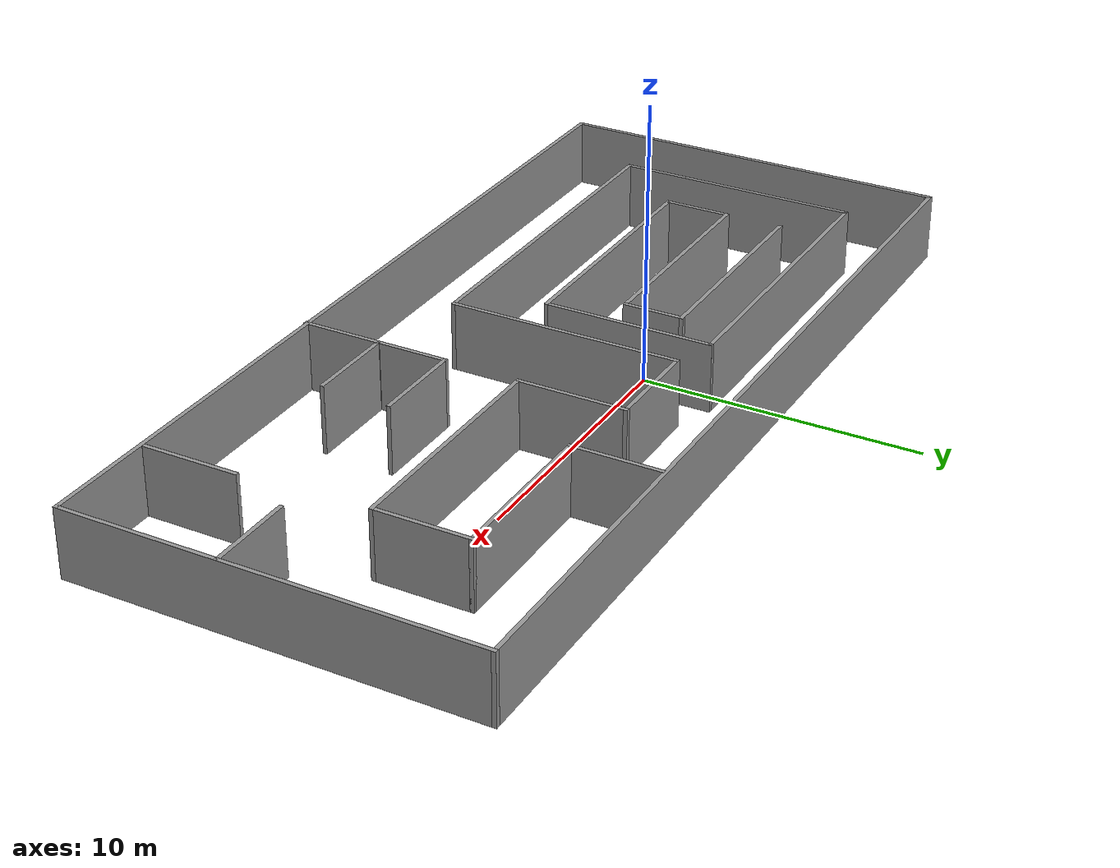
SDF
<?xml version='1.0'?>
<sdf version='1.7'>
  <model name='Kobuki_maze'>
    <pose>2.67277 -2.30619 0 0 -0 0</pose>
    <link name='Wall_10'>
      <collision name='Wall_10_Collision'>
        <geometry>
          <box>
            <size>3.5 0.15 2.5</size>
          </box>
        </geometry>
        <pose>0 0 1.25 0 -0 0</pose>
      </collision>
      <visual name='Wall_10_Visual'>
        <pose>0 0 1.25 0 -0 0</pose>
        <geometry>
          <box>
            <size>3.5 0.15 2.5</size>
          </box>
        </geometry>
        <material>
          <script>
            <uri>file://media/materials/scripts/gazebo.material</uri>
            <name>Gazebo/Grey</name>
          </script>
          <ambient>1 1 1 1</ambient>
        </material>
        <meta>
          <layer>0</layer>
        </meta>
      </visual>
      <pose>11.8634 2.43443 0 0 -0 -1.5708</pose>
    </link>
    <link name='Wall_11'>
      <collision name='Wall_11_Collision'>
        <geometry>
          <box>
            <size>8.75 0.15 2.5</size>
          </box>
        </geometry>
        <pose>0 0 1.25 0 -0 0</pose>
      </collision>
      <visual name='Wall_11_Visual'>
        <pose>0 0 1.25 0 -0 0</pose>
        <geometry>
          <box>
            <size>8.75 0.15 2.5</size>
          </box>
        </geometry>
        <material>
          <script>
            <uri>file://media/materials/scripts/gazebo.material</uri>
            <name>Gazebo/Grey</name>
          </script>
          <ambient>1 1 1 1</ambient>
        </material>
        <meta>
          <layer>0</layer>
        </meta>
      </visual>
      <pose>7.56341 0.759428 0 0 -0 3.14159</pose>
    </link>
    <link name='Wall_12'>
      <collision name='Wall_12_Collision'>
        <geometry>
          <box>
            <size>4 0.15 2.5</size>
          </box>
        </geometry>
        <pose>0 0 1.25 0 -0 0</pose>
      </collision>
      <visual name='Wall_12_Visual'>
        <pose>0 0 1.25 0 -0 0</pose>
        <geometry>
          <box>
            <size>4 0.15 2.5</size>
          </box>
        </geometry>
        <material>
          <script>
            <uri>file://media/materials/scripts/gazebo.material</uri>
            <name>Gazebo/Grey</name>
          </script>
          <ambient>1 1 1 1</ambient>
        </material>
        <meta>
          <layer>0</layer>
        </meta>
      </visual>
      <pose>3.26341 2.68443 0 0 -0 1.5708</pose>
    </link>
    <link name='Wall_13'>
      <collision name='Wall_13_Collision'>
        <geometry>
          <box>
            <size>3.75 0.15 2.5</size>
          </box>
        </geometry>
        <pose>0 0 1.25 0 -0 0</pose>
      </collision>
      <visual name='Wall_13_Visual'>
        <pose>0 0 1.25 0 -0 0</pose>
        <geometry>
          <box>
            <size>3.75 0.15 2.5</size>
          </box>
        </geometry>
        <material>
          <script>
            <uri>file://media/materials/scripts/gazebo.material</uri>
            <name>Gazebo/Grey</name>
          </script>
          <ambient>1 1 1 1</ambient>
        </material>
        <meta>
          <layer>0</layer>
        </meta>
      </visual>
      <pose>1.46341 4.60943 0 0 -0 3.14159</pose>
    </link>
    <link name='Wall_14'>
      <collision name='Wall_14_Collision'>
        <geometry>
          <box>
            <size>8.5 0.15 2.5</size>
          </box>
        </geometry>
        <pose>0 0 1.25 0 -0 0</pose>
      </collision>
      <visual name='Wall_14_Visual'>
        <pose>0 0 1.25 0 -0 0</pose>
        <geometry>
          <box>
            <size>8.5 0.15 2.5</size>
          </box>
        </geometry>
        <material>
          <script>
            <uri>file://media/materials/scripts/gazebo.material</uri>
            <name>Gazebo/Grey</name>
          </script>
          <ambient>1 1 1 1</ambient>
        </material>
        <meta>
          <layer>0</layer>
        </meta>
      </visual>
      <pose>-0.336591 0.434428 0 0 -0 -1.5708</pose>
    </link>
    <link name='Wall_15'>
      <collision name='Wall_15_Collision'>
        <geometry>
          <box>
            <size>13.25 0.15 2.5</size>
          </box>
        </geometry>
        <pose>0 0 1.25 0 -0 0</pose>
      </collision>
      <visual name='Wall_15_Visual'>
        <pose>0 0 1.25 0 -0 0</pose>
        <geometry>
          <box>
            <size>13.25 0.15 2.5</size>
          </box>
        </geometry>
        <material>
          <script>
            <uri>file://media/materials/scripts/gazebo.material</uri>
            <name>Gazebo/Grey</name>
          </script>
          <ambient>1 1 1 1</ambient>
        </material>
        <meta>
          <layer>0</layer>
        </meta>
      </visual>
      <pose>-6.88659 -3.74057 0 0 -0 3.14159</pose>
    </link>
    <link name='Wall_16'>
      <collision name='Wall_16_Collision'>
        <geometry>
          <box>
            <size>9 0.15 2.5</size>
          </box>
        </geometry>
        <pose>0 0 1.25 0 -0 0</pose>
      </collision>
      <visual name='Wall_16_Visual'>
        <pose>0 0 1.25 0 -0 0</pose>
        <geometry>
          <box>
            <size>9 0.15 2.5</size>
          </box>
        </geometry>
        <material>
          <script>
            <uri>file://media/materials/scripts/gazebo.material</uri>
            <name>Gazebo/Grey</name>
          </script>
          <ambient>1 1 1 1</ambient>
        </material>
        <meta>
          <layer>0</layer>
        </meta>
      </visual>
      <pose>-13.4366 0.684428 0 0 -0 1.5708</pose>
    </link>
    <link name='Wall_17'>
      <collision name='Wall_17_Collision'>
        <geometry>
          <box>
            <size>11.75 0.15 2.5</size>
          </box>
        </geometry>
        <pose>0 0 1.25 0 -0 0</pose>
      </collision>
      <visual name='Wall_17_Visual'>
        <pose>0 0 1.25 0 -0 0</pose>
        <geometry>
          <box>
            <size>11.75 0.15 2.5</size>
          </box>
        </geometry>
        <material>
          <script>
            <uri>file://media/materials/scripts/gazebo.material</uri>
            <name>Gazebo/Grey</name>
          </script>
          <ambient>1 1 1 1</ambient>
        </material>
        <meta>
          <layer>0</layer>
        </meta>
      </visual>
      <pose>-7.63659 5.10943 0 0 -0 0</pose>
    </link>
    <link name='Wall_18'>
      <collision name='Wall_18_Collision'>
        <geometry>
          <box>
            <size>6.25 0.15 2.5</size>
          </box>
        </geometry>
        <pose>0 0 1.25 0 -0 0</pose>
      </collision>
      <visual name='Wall_18_Visual'>
        <pose>0 0 1.25 0 -0 0</pose>
        <geometry>
          <box>
            <size>6.25 0.15 2.5</size>
          </box>
        </geometry>
        <material>
          <script>
            <uri>file://media/materials/scripts/gazebo.material</uri>
            <name>Gazebo/Grey</name>
          </script>
          <ambient>1 1 1 1</ambient>
        </material>
        <meta>
          <layer>0</layer>
        </meta>
      </visual>
      <pose>-1.83659 2.05943 0 0 -0 -1.5708</pose>
    </link>
    <link name='Wall_19'>
      <collision name='Wall_19_Collision'>
        <geometry>
          <box>
            <size>9.5 0.15 2.5</size>
          </box>
        </geometry>
        <pose>0 0 1.25 0 -0 0</pose>
      </collision>
      <visual name='Wall_19_Visual'>
        <pose>0 0 1.25 0 -0 0</pose>
        <geometry>
          <box>
            <size>9.5 0.15 2.5</size>
          </box>
        </geometry>
        <material>
          <script>
            <uri>file://media/materials/scripts/gazebo.material</uri>
            <name>Gazebo/Grey</name>
          </script>
          <ambient>1 1 1 1</ambient>
        </material>
        <meta>
          <layer>0</layer>
        </meta>
      </visual>
      <pose>-6.51159 -0.990572 0 0 -0 3.14159</pose>
    </link>
    <link name='Wall_2'>
      <collision name='Wall_2_Collision'>
        <geometry>
          <box>
            <size>14.5 0.15 2.5</size>
          </box>
        </geometry>
        <pose>0 0 1.25 0 -0 0</pose>
      </collision>
      <visual name='Wall_2_Visual'>
        <pose>0 0 1.25 0 -0 0</pose>
        <geometry>
          <box>
            <size>14.5 0.15 2.5</size>
          </box>
        </geometry>
        <material>
          <script>
            <uri>file://media/materials/scripts/gazebo.material</uri>
            <name>Gazebo/Grey</name>
          </script>
          <ambient>1 1 1 1</ambient>
        </material>
        <meta>
          <layer>0</layer>
        </meta>
      </visual>
      <pose>-16.175 -0.101012 0 0 -0 -1.5708</pose>
    </link>
    <link name='Wall_20'>
      <collision name='Wall_20_Collision'>
        <geometry>
          <box>
            <size>2.5 0.15 2.5</size>
          </box>
        </geometry>
        <pose>0 0 1.25 0 -0 0</pose>
      </collision>
      <visual name='Wall_20_Visual'>
        <pose>0 0 1.25 0 -0 0</pose>
        <geometry>
          <box>
            <size>2.5 0.15 2.5</size>
          </box>
        </geometry>
        <material>
          <script>
            <uri>file://media/materials/scripts/gazebo.material</uri>
            <name>Gazebo/Grey</name>
          </script>
          <ambient>1 1 1 1</ambient>
        </material>
        <meta>
          <layer>0</layer>
        </meta>
      </visual>
      <pose>-11.1866 0.184428 0 0 -0 1.5708</pose>
    </link>
    <link name='Wall_21'>
      <collision name='Wall_21_Collision'>
        <geometry>
          <box>
            <size>8.25 0.15 2.5</size>
          </box>
        </geometry>
        <pose>0 0 1.25 0 -0 0</pose>
      </collision>
      <visual name='Wall_21_Visual'>
        <pose>0 0 1.25 0 -0 0</pose>
        <geometry>
          <box>
            <size>8.25 0.15 2.5</size>
          </box>
        </geometry>
        <material>
          <script>
            <uri>file://media/materials/scripts/gazebo.material</uri>
            <name>Gazebo/Grey</name>
          </script>
          <ambient>1 1 1 1</ambient>
        </material>
        <meta>
          <layer>0</layer>
        </meta>
      </visual>
      <pose>-7.13659 1.35943 0 0 -0 0</pose>
    </link>
    <link name='Wall_22'>
      <collision name='Wall_22_Collision'>
        <geometry>
          <box>
            <size>2.25 0.15 2.5</size>
          </box>
        </geometry>
        <pose>0 0 1.25 0 -0 0</pose>
      </collision>
      <visual name='Wall_22_Visual'>
        <pose>0 0 1.25 0 -0 0</pose>
        <geometry>
          <box>
            <size>2.25 0.15 2.5</size>
          </box>
        </geometry>
        <material>
          <script>
            <uri>file://media/materials/scripts/gazebo.material</uri>
            <name>Gazebo/Grey</name>
          </script>
          <ambient>1 1 1 1</ambient>
        </material>
        <meta>
          <layer>0</layer>
        </meta>
      </visual>
      <pose>-3.08659 2.40943 0 0 -0 1.5708</pose>
    </link>
    <link name='Wall_23'>
      <collision name='Wall_23_Collision'>
        <geometry>
          <box>
            <size>8.25 0.15 2.5</size>
          </box>
        </geometry>
        <pose>0 0 1.25 0 -0 0</pose>
      </collision>
      <visual name='Wall_23_Visual'>
        <pose>0 0 1.25 0 -0 0</pose>
        <geometry>
          <box>
            <size>8.25 0.15 2.5</size>
          </box>
        </geometry>
        <material>
          <script>
            <uri>file://media/materials/scripts/gazebo.material</uri>
            <name>Gazebo/Grey</name>
          </script>
          <ambient>1 1 1 1</ambient>
        </material>
        <meta>
          <layer>0</layer>
        </meta>
      </visual>
      <pose>-7.13659 3.45943 0 0 -0 3.14159</pose>
    </link>
    <link name='Wall_25'>
      <collision name='Wall_25_Collision'>
        <geometry>
          <box>
            <size>5.5 0.15 2.5</size>
          </box>
        </geometry>
        <pose>0 0 1.25 0 -0 0</pose>
      </collision>
      <visual name='Wall_25_Visual'>
        <pose>0 0 1.25 0 -0 0</pose>
        <geometry>
          <box>
            <size>5.5 0.15 2.5</size>
          </box>
        </geometry>
        <material>
          <script>
            <uri>file://media/materials/scripts/gazebo.material</uri>
            <name>Gazebo/Grey</name>
          </script>
          <ambient>1 1 1 1</ambient>
        </material>
        <meta>
          <layer>0</layer>
        </meta>
      </visual>
      <pose>3.22197 -4.64899 0 0 -0 -1.5708</pose>
    </link>
    <link name='Wall_27'>
      <collision name='Wall_27_Collision'>
        <geometry>
          <box>
            <size>3.25 0.15 2.5</size>
          </box>
        </geometry>
        <pose>0 0 1.25 0 -0 0</pose>
      </collision>
      <visual name='Wall_27_Visual'>
        <pose>0 0 1.25 0 -0 0</pose>
        <geometry>
          <box>
            <size>3.25 0.15 2.5</size>
          </box>
        </geometry>
        <material>
          <script>
            <uri>file://media/materials/scripts/gazebo.material</uri>
            <name>Gazebo/Grey</name>
          </script>
          <ambient>1 1 1 1</ambient>
        </material>
        <meta>
          <layer>0</layer>
        </meta>
      </visual>
      <pose>4.94542 -4.5007 0 0 -0 0</pose>
    </link>
    <link name='Wall_29'>
      <collision name='Wall_29_Collision'>
        <geometry>
          <box>
            <size>0.25 0.15 2.5</size>
          </box>
        </geometry>
        <pose>0 0 1.25 0 -0 0</pose>
      </collision>
      <visual name='Wall_29_Visual'>
        <pose>0 0 1.25 0 -0 0</pose>
        <geometry>
          <box>
            <size>0.25 0.15 2.5</size>
          </box>
        </geometry>
        <material>
          <script>
            <uri>file://media/materials/scripts/gazebo.material</uri>
            <name>Gazebo/Grey</name>
          </script>
          <ambient>1 1 1 1</ambient>
        </material>
        <meta>
          <layer>0</layer>
        </meta>
      </visual>
      <pose>3.34542 -4.5007 0 0 -0 3.14159</pose>
    </link>
    <link name='Wall_3'>
      <collision name='Wall_3_Collision'>
        <geometry>
          <box>
            <size>32.5 0.15 2.5</size>
          </box>
        </geometry>
        <pose>0 0 1.25 0 -0 0</pose>
      </collision>
      <visual name='Wall_3_Visual'>
        <pose>0 0 1.25 0 -0 0</pose>
        <geometry>
          <box>
            <size>32.5 0.15 2.5</size>
          </box>
        </geometry>
        <material>
          <script>
            <uri>file://media/materials/scripts/gazebo.material</uri>
            <name>Gazebo/Grey</name>
          </script>
          <ambient>1 1 1 1</ambient>
        </material>
        <meta>
          <layer>0</layer>
        </meta>
      </visual>
      <pose>0 -7.27601 0 0 -0 0</pose>
    </link>
    <link name='Wall_31'>
      <collision name='Wall_31_Collision'>
        <geometry>
          <box>
            <size>3.5 0.15 2.5</size>
          </box>
        </geometry>
        <pose>0 0 1.25 0 -0 0</pose>
      </collision>
      <visual name='Wall_31_Visual'>
        <pose>0 0 1.25 0 -0 0</pose>
        <geometry>
          <box>
            <size>3.5 0.15 2.5</size>
          </box>
        </geometry>
        <material>
          <script>
            <uri>file://media/materials/scripts/gazebo.material</uri>
            <name>Gazebo/Grey</name>
          </script>
          <ambient>1 1 1 1</ambient>
        </material>
        <meta>
          <layer>0</layer>
        </meta>
      </visual>
      <pose>4.89697 -1.97399 0 0 -0 0</pose>
    </link>
    <link name='Wall_33'>
      <collision name='Wall_33_Collision'>
        <geometry>
          <box>
            <size>3.5 0.15 2.5</size>
          </box>
        </geometry>
        <pose>0 0 1.25 0 -0 0</pose>
      </collision>
      <visual name='Wall_33_Visual'>
        <pose>0 0 1.25 0 -0 0</pose>
        <geometry>
          <box>
            <size>3.5 0.15 2.5</size>
          </box>
        </geometry>
        <material>
          <script>
            <uri>file://media/materials/scripts/gazebo.material</uri>
            <name>Gazebo/Grey</name>
          </script>
          <ambient>1 1 1 1</ambient>
        </material>
        <meta>
          <layer>0</layer>
        </meta>
      </visual>
      <pose>12.1889 -5.48612 0 0 -0 -1.5708</pose>
    </link>
    <link name='Wall_35'>
      <collision name='Wall_35_Collision'>
        <geometry>
          <box>
            <size>3.25 0.15 2.5</size>
          </box>
        </geometry>
        <pose>0 0 1.25 0 -0 0</pose>
      </collision>
      <visual name='Wall_35_Visual'>
        <pose>0 0 1.25 0 -0 0</pose>
        <geometry>
          <box>
            <size>3.25 0.15 2.5</size>
          </box>
        </geometry>
        <material>
          <script>
            <uri>file://media/materials/scripts/gazebo.material</uri>
            <name>Gazebo/Grey</name>
          </script>
          <ambient>1 1 1 1</ambient>
        </material>
        <meta>
          <layer>0</layer>
        </meta>
      </visual>
      <pose>14.6184 -1.59485 0 0 -0 0</pose>
    </link>
    <link name='Wall_4'>
      <collision name='Wall_4_Collision'>
        <geometry>
          <box>
            <size>14.75 0.15 2.5</size>
          </box>
        </geometry>
        <pose>0 0 1.25 0 -0 0</pose>
      </collision>
      <visual name='Wall_4_Visual'>
        <pose>0 0 1.25 0 -0 0</pose>
        <geometry>
          <box>
            <size>14.75 0.15 2.5</size>
          </box>
        </geometry>
        <material>
          <script>
            <uri>file://media/materials/scripts/gazebo.material</uri>
            <name>Gazebo/Grey</name>
          </script>
          <ambient>1 1 1 1</ambient>
        </material>
        <meta>
          <layer>0</layer>
        </meta>
      </visual>
      <pose>16.175 0.023988 0 0 -0 1.5708</pose>
    </link>
    <link name='Wall_5'>
      <collision name='Wall_5_Collision'>
        <geometry>
          <box>
            <size>32.5 0.15 2.5</size>
          </box>
        </geometry>
        <pose>0 0 1.25 0 -0 0</pose>
      </collision>
      <visual name='Wall_5_Visual'>
        <pose>0 0 1.25 0 -0 0</pose>
        <geometry>
          <box>
            <size>32.5 0.15 2.5</size>
          </box>
        </geometry>
        <material>
          <script>
            <uri>file://media/materials/scripts/gazebo.material</uri>
            <name>Gazebo/Grey</name>
          </script>
          <ambient>1 1 1 1</ambient>
        </material>
        <meta>
          <layer>0</layer>
        </meta>
      </visual>
      <pose>0 7.32399 0 0 -0 3.14159</pose>
    </link>
    <link name='Wall_6'>
      <collision name='Wall_6_Collision'>
        <geometry>
          <box>
            <size>0.4 0.15 2.5</size>
          </box>
        </geometry>
        <pose>0 0 1.25 0 -0 0</pose>
      </collision>
      <visual name='Wall_6_Visual'>
        <pose>0 0 1.25 0 -0 0</pose>
        <geometry>
          <box>
            <size>0.4 0.15 2.5</size>
          </box>
        </geometry>
        <material>
          <script>
            <uri>file://media/materials/scripts/gazebo.material</uri>
            <name>Gazebo/Grey</name>
          </script>
          <ambient>1 1 1 1</ambient>
        </material>
        <meta>
          <layer>0</layer>
        </meta>
      </visual>
      <pose>-16.175 7.19899 0 0 -0 -1.5708</pose>
    </link>
    <link name='Wall_8'>
      <collision name='Wall_8_Collision'>
        <geometry>
          <box>
            <size>3.25 0.15 2.5</size>
          </box>
        </geometry>
        <pose>0 0 1.25 0 -0 0</pose>
      </collision>
      <visual name='Wall_8_Visual'>
        <pose>0 0 1.25 0 -0 0</pose>
        <geometry>
          <box>
            <size>3.25 0.15 2.5</size>
          </box>
        </geometry>
        <material>
          <script>
            <uri>file://media/materials/scripts/gazebo.material</uri>
            <name>Gazebo/Grey</name>
          </script>
          <ambient>1 1 1 1</ambient>
        </material>
        <meta>
          <layer>0</layer>
        </meta>
      </visual>
      <pose>6.01341 5.65943 0 0 -0 -1.5708</pose>
    </link>
    <link name='Wall_9'>
      <collision name='Wall_9_Collision'>
        <geometry>
          <box>
            <size>6 0.15 2.5</size>
          </box>
        </geometry>
        <pose>0 0 1.25 0 -0 0</pose>
      </collision>
      <visual name='Wall_9_Visual'>
        <pose>0 0 1.25 0 -0 0</pose>
        <geometry>
          <box>
            <size>6 0.15 2.5</size>
          </box>
        </geometry>
        <material>
          <script>
            <uri>file://media/materials/scripts/gazebo.material</uri>
            <name>Gazebo/Grey</name>
          </script>
          <ambient>1 1 1 1</ambient>
        </material>
        <meta>
          <layer>0</layer>
        </meta>
      </visual>
      <pose>8.93841 4.10943 0 0 -0 0</pose>
    </link>
    <static>1</static>
  </model>
</sdf>
